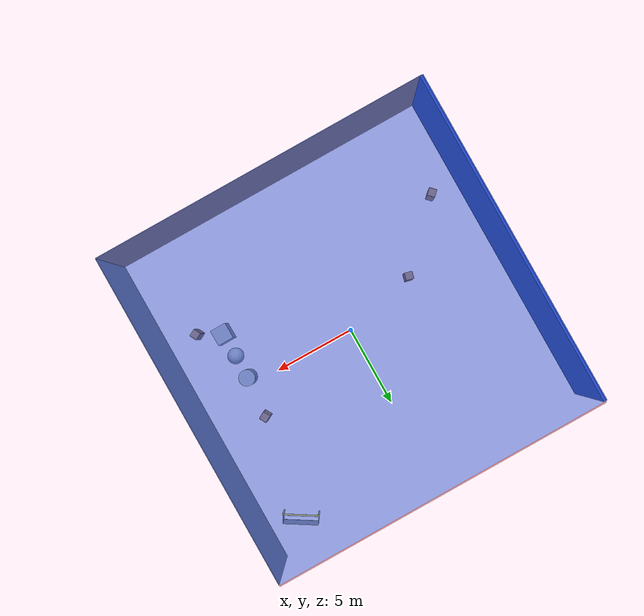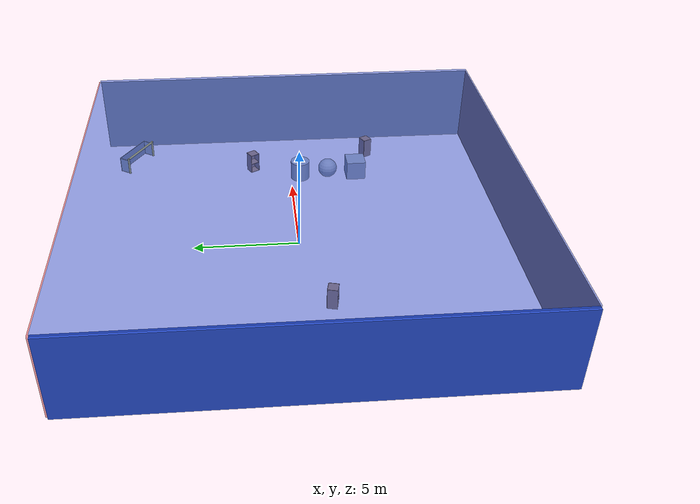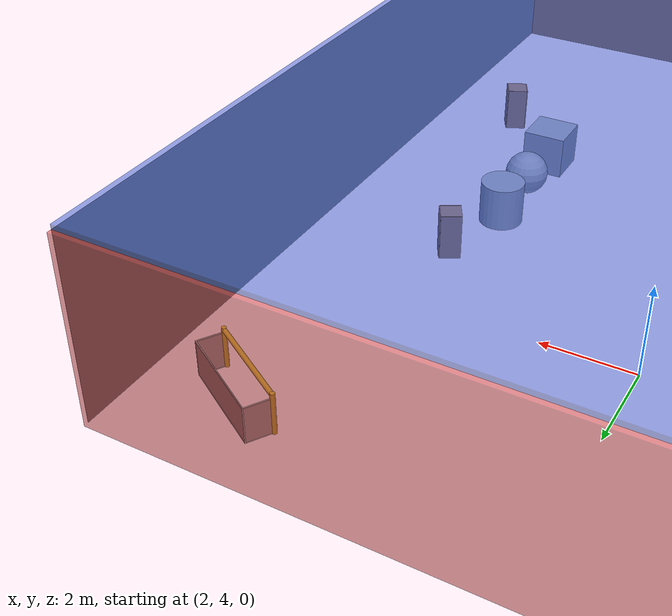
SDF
<sdf version="1.4">
 <world name="default">
  <physics type="ode">
   <max_step_size>0.001</max_step_size>
   <real_time_factor>1</real_time_factor>
   <real_time_update_rate>1000</real_time_update_rate>
   <gravity>0 0 -9.8</gravity>
  </physics>
  <scene><ambient>0.4 0.4 0.4 1</ambient><background>0.7 0.7 0.7 1</background><shadows>1</shadows></scene>
  <model name="Surrounding">
   <static>1</static>
   <link name="Ceiling">
    <collision name="Ceiling_Collision"><geometry><box><size>20 20 0.1</size></box></geometry></collision>
    <visual name="Ceiling_Visual">
     <geometry><box><size>20 20 0.1</size></box></geometry>
     <material>
      <script><uri>file://media/materials/scripts/gazebo.material</uri><name>Gazebo/BlueTransparent</name></script>
     </material>
    </visual>
    <pose>0 0 4.05 0 0 0</pose>
   </link>
   <link name="Wall_South">
    <collision name="Wall_South_Collision">
     <geometry><box><size>20 0 4</size></box></geometry>
     <pose>0 0 2 0 -0 0</pose>
    </collision>
    <visual name="Wall_South_Visual">
     <pose>0 0 2 0 -0 0</pose>
     <geometry><box><size>20 0 4</size></box></geometry>
     <material>
      <script><uri>file://media/materials/scripts/gazebo.material</uri><name>Gazebo/WoodPallet</name></script>
     </material>
    </visual>
    <velocity_decay><linear>0</linear><angular>0</angular></velocity_decay>
    <pose>0 -10 0 0 -0 0</pose>
   </link>
   <link name="Wall_East">
    <collision name="Wall_21_Collision">
     <geometry><box><size>20 0 4</size></box></geometry>
     <pose>0 0 2 0 -0 0</pose>
    </collision>
    <visual name="Wall_21_Visual">
     <pose>0 0 2 0 -0 0</pose>
     <geometry><box><size>20 0 4</size></box></geometry>
     <material>
      <script><uri>file://media/materials/scripts/gazebo.material</uri><name>Gazebo/GreyGradientSky</name></script>
     </material>
    </visual>
    <velocity_decay><linear>0</linear><angular>0</angular></velocity_decay>
    <pose>10 0 0 0 -0 1.5708</pose>
   </link>
   <link name="Wall_North">
    <collision name="Wall_22_Collision">
     <geometry><box><size>20 0.2 4</size></box></geometry>
     <pose>0 0 2 0 -0 0</pose>
    </collision>
    <visual name="Wall_22_Visual">
     <pose>0 0 2 0 -0 0</pose>
     <geometry><box><size>20 0.2 4</size></box></geometry>
     <material>
      <script><uri>file://media/materials/scripts/gazebo.material</uri><name>Gazebo/RedTransparent</name></script>
     </material>
    </visual>
    <velocity_decay><linear>0</linear><angular>0</angular></velocity_decay>
    <pose>0 10 0 0 -0 0</pose>
   </link>
   <link name="Wall_West">
    <collision name="Wall_23_Collision">
     <geometry><box><size>20 0.2 4</size></box></geometry>
     <pose>0 0 2 0 -0 0</pose>
    </collision>
    <visual name="Wall_23_Visual">
     <pose>0 0 2 0 -0 0</pose>
     <geometry><box><size>20 0.2 4</size></box></geometry>
     <material>
      <script><uri>file://media/materials/scripts/gazebo.material</uri><name>Gazebo/BlueLaser</name></script>
     </material>
    </visual>
    <velocity_decay><linear>0</linear><angular>0</angular></velocity_decay>
    <pose>-10 0 0 0 0 -1.5708</pose>
   </link>
   <link name="Ground_link">
    <collision name="collision">
     <pose>0 0 .05 0 -0 0</pose>
     <geometry><box><size>20 20 0.1</size></box></geometry>
    </collision>
    <visual name="visual">
     <pose>0 0 .05 0 -0 0</pose>
     <geometry><box><size>20 20 0.1</size></box></geometry>
     <material>
      <script>
       <uri>file://media/materials/scripts/gazebo.material</uri>
       <name>Gazebo/OrangeTransparent</name>
      </script>
     </material>
    </visual>
   </link>
   <static>1</static>
  </model>
  <spherical_coordinates>
   <surface_model>EARTH_WGS84</surface_model>
   <latitude_deg>0</latitude_deg>
   <longitude_deg>0</longitude_deg>
   <elevation>0</elevation>
   <heading_deg>0</heading_deg>
  </spherical_coordinates>
  <light name="lightball_0" type="diffuse">
   <diffuse>0.8 0.8 0.8 1</diffuse>
   <specular>0.2 0.2 0.2 1</specular>
   <attenuation>
    <range>100</range>
    <constant>0.7</constant>
    <linear>0.01</linear>
    <quadratic>0.001</quadratic>
   </attenuation>
   <direction>-0.5 0.1 -0.9</direction>
   <pose>-4.65273453131 -6.81032325865 3.60702200878 0 0 0</pose>
  </light>
  <light name="lightball_1" type="diffuse">
   <diffuse>0.8 0.8 0.8 1</diffuse>
   <specular>0.2 0.2 0.2 1</specular>
   <attenuation>
    <range>100</range>
    <constant>0.7</constant>
    <linear>0.01</linear>
    <quadratic>0.001</quadratic>
   </attenuation>
   <direction>-0.5 0.1 -0.9</direction>
   <pose>-0.0755667062576 5.94330623055 3.36275023136 0 0 0</pose>
  </light>
  <light name="lightball_2" type="diffuse">
   <diffuse>0.8 0.8 0.8 1</diffuse>
   <specular>0.2 0.2 0.2 1</specular>
   <attenuation>
    <range>100</range>
    <constant>0.7</constant>
    <linear>0.01</linear>
    <quadratic>0.001</quadratic>
   </attenuation>
   <direction>-0.5 0.1 -0.9</direction>
   <pose>8.67152017084 -6.89040510913 2.15293655396 0 0 0</pose>
  </light>
  <light name="lightball_3" type="diffuse">
   <diffuse>0.8 0.8 0.8 1</diffuse>
   <specular>0.2 0.2 0.2 1</specular>
   <attenuation>
    <range>100</range>
    <constant>0.7</constant>
    <linear>0.01</linear>
    <quadratic>0.001</quadratic>
   </attenuation>
   <direction>-0.5 0.1 -0.9</direction>
   <pose>1.66640544982 -6.61689804997 2.07998163155 0 0 0</pose>
  </light>
  <light name="lightball_4" type="diffuse">
   <diffuse>0.8 0.8 0.8 1</diffuse>
   <specular>0.2 0.2 0.2 1</specular>
   <attenuation>
    <range>100</range>
    <constant>0.7</constant>
    <linear>0.01</linear>
    <quadratic>0.001</quadratic>
   </attenuation>
   <direction>-0.5 0.1 -0.9</direction>
   <pose>-6.39229638894 -0.117886449412 2.47116936246 0 0 0</pose>
  </light>
  <light name="lightball_5" type="diffuse">
   <diffuse>0.8 0.8 0.8 1</diffuse>
   <specular>0.2 0.2 0.2 1</specular>
   <attenuation>
    <range>100</range>
    <constant>0.7</constant>
    <linear>0.01</linear>
    <quadratic>0.001</quadratic>
   </attenuation>
   <direction>-0.5 0.1 -0.9</direction>
   <pose>-5.06834203656 5.5499152909 1.0374937086 0 0 0</pose>
  </light>
  <light name="lightball_6" type="diffuse">
   <diffuse>0.8 0.8 0.8 1</diffuse>
   <specular>0.2 0.2 0.2 1</specular>
   <attenuation>
    <range>100</range>
    <constant>0.7</constant>
    <linear>0.01</linear>
    <quadratic>0.001</quadratic>
   </attenuation>
   <direction>-0.5 0.1 -0.9</direction>
   <pose>-4.96296422501 4.94368848298 3.18538405633 0 0 0</pose>
  </light>
  <light name="lightball_7" type="diffuse">
   <diffuse>0.8 0.8 0.8 1</diffuse>
   <specular>0.2 0.2 0.2 1</specular>
   <attenuation>
    <range>100</range>
    <constant>0.7</constant>
    <linear>0.01</linear>
    <quadratic>0.001</quadratic>
   </attenuation>
   <direction>-0.5 0.1 -0.9</direction>
   <pose>4.47966892934 5.3221888922 1.25050419712 0 0 0</pose>
  </light>
  <light name="lightball_8" type="diffuse">
   <diffuse>0.8 0.8 0.8 1</diffuse>
   <specular>0.2 0.2 0.2 1</specular>
   <attenuation>
    <range>100</range>
    <constant>0.7</constant>
    <linear>0.01</linear>
    <quadratic>0.001</quadratic>
   </attenuation>
   <direction>-0.5 0.1 -0.9</direction>
   <pose>-4.68967567726 -4.91939440693 1.29950459553 0 0 0</pose>
  </light>
  <light name="lightball_9" type="diffuse">
   <diffuse>0.8 0.8 0.8 1</diffuse>
   <specular>0.2 0.2 0.2 1</specular>
   <attenuation>
    <range>100</range>
    <constant>0.7</constant>
    <linear>0.01</linear>
    <quadratic>0.001</quadratic>
   </attenuation>
   <direction>-0.5 0.1 -0.9</direction>
   <pose>7.60623877816 3.73342949626 1.64961878507 0 0 0</pose>
  </light>
  <light name="lightball_10" type="diffuse">
   <diffuse>0.8 0.8 0.8 1</diffuse>
   <specular>0.2 0.2 0.2 1</specular>
   <attenuation>
    <range>100</range>
    <constant>0.7</constant>
    <linear>0.01</linear>
    <quadratic>0.001</quadratic>
   </attenuation>
   <direction>-0.5 0.1 -0.9</direction>
   <pose>8.50687110839 -9.77917894984 1.96436225462 0 0 0</pose>
  </light>
  <include><uri>model://cabinet</uri><pose>-8.1308170884 -4.68900318105 0 0 0 2.3513247001</pose></include>
  <include><uri>model://cabinet</uri><pose>-4.54911449268 -1.0934273554 0 0 0 1.33406762624</pose></include>
  <include><uri>model://cabinet</uri><pose>8.07347091317 -4.25039789029 0 0 0 2.04835268977</pose></include>
  <include>
   <uri>model://textured_shapes</uri>
   <pose>6.79829792644 -2.04569467184 0 0 0 0.0092193491702</pose>
  </include>
  <include><uri>model://cabinet</uri><pose>6.89160551422 1.98259721884 0 0 0 0.511532020878</pose></include>
  <include>
   <uri>model://robocup_3Dsim_goal</uri>
   <pose>7.90095881761 8.05193684242 0 0 0 1.01703008012</pose>
  </include>
 </world>
</sdf>

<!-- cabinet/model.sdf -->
<sdf version="1.5">
  <model name="cabinet">
    <static>true</static>
    <link name="cabinet_bottom_plate">
      <inertial>
        <pose>0 0 -1 0 0 0</pose>
        <inertia>
          <ixx>2.050000</ixx>
          <ixy>0</ixy>
          <ixz>0</ixz>
          <iyy>2.050000</iyy>
          <iyz>0</iyz>
          <izz>2.050000</izz>
        </inertia>
        <mass>25.000000</mass>
      </inertial>
      <collision name="cabinet_bottom_plate_geom">
        <pose>0 0 0.010000 0 0 0</pose>
        <geometry>
          <box>
            <size>0.450000 0.450000 0.020000</size>
          </box>
        </geometry>
      </collision>
      <visual name="cabinet_bottom_plate_geom_visual">
        <pose>0 0 0.010000 0 0 0</pose>
        <geometry>
          <box>
            <size>0.450000 0.450000 0.020000</size>
          </box>
        </geometry>
        <material>
          <script>
            <uri>model://media/materials/scripts/gazebo.material</uri>
            <name>Gazebo/Wood</name>
          </script>
        </material>
      </visual>
      <collision name="cabinet_bottom_plate_geom_cabinet_back_plate">
        <pose>0.235000 0 0.510000 0 0 0</pose>
        <geometry>
          <box>
            <size>0.020000 0.450000 1.020000</size>
          </box>
        </geometry>
      </collision>
      <visual name="cabinet_bottom_plate_geom_cabinet_back_plate_visual">
        <pose>0.235000 0 0.510000 0 0 0</pose>
        <geometry>
          <box>
            <size>0.020000 0.450000 1.020000</size>
          </box>
        </geometry>
        <material>
          <script>
            <uri>model://media/materials/scripts/gazebo.material</uri>
            <name>Gazebo/Wood</name>
          </script>
        </material>
      </visual>
      <collision name="cabinet_bottom_plate_geom_cabinet_left_plate">
        <pose>0 0.235000 0.510000 0 0 0</pose>
        <geometry>
          <box>
            <size>0.450000 0.020000 1.020000</size>
          </box>
        </geometry>
      </collision>
      <visual name="cabinet_bottom_plate_geom_cabinet_left_plate_visual">
        <pose>0 0.235000 0.510000 0 0 0</pose>
        <geometry>
          <box>
            <size>0.450000 0.020000 1.020000</size>
          </box>
        </geometry>
        <material>
          <script>
            <uri>model://media/materials/scripts/gazebo.material</uri>
            <name>Gazebo/Wood</name>
          </script>
        </material>
      </visual>
      <collision name="cabinet_bottom_plate_geom_cabinet_middle_plate">
        <pose>0 0 0.510000 0 0 0</pose>
        <geometry>
          <box>
            <size>0.450000 0.450000 0.020000</size>
          </box>
        </geometry>
      </collision>
      <visual name="cabinet_bottom_plate_geom_cabinet_middle_plate_visual">
        <pose>0 0 0.510000 0 0 0</pose>
        <geometry>
          <box>
            <size>0.450000 0.450000 0.020000</size>
          </box>
        </geometry>
        <material>
          <script>
            <uri>model://media/materials/scripts/gazebo.material</uri>
            <name>Gazebo/Wood</name>
          </script>
        </material>
      </visual>
      <collision name="cabinet_bottom_plate_geom_cabinet_right_plate">
        <pose>0 -0.235000 0.510000 0 0 0</pose>
        <geometry>
          <box>
            <size>0.450000 0.020000 1.020000</size>
          </box>
        </geometry>
      </collision>
      <visual name="cabinet_bottom_plate_geom_cabinet_right_plate_visual">
        <pose>0 -0.235000 0.510000 0 0 0</pose>
        <geometry>
          <box>
            <size>0.450000 0.020000 1.020000</size>
          </box>
        </geometry>
        <material>
          <script>
            <uri>model://media/materials/scripts/gazebo.material</uri>
            <name>Gazebo/Wood</name>
          </script>
        </material>
      </visual>
      <collision name="cabinet_bottom_plate_geom_cabinet_top_plate">
        <pose>0 0 1.010000 0 0 0</pose>
        <geometry>
          <box>
            <size>0.450000 0.450000 0.020000</size>
          </box>
        </geometry>
      </collision>
      <visual name="cabinet_bottom_plate_geom_cabinet_top_plate_visual">
        <pose>0 0 1.010000 0 0 0</pose>
        <geometry>
          <box>
            <size>0.450000 0.450000 0.020000</size>
          </box>
        </geometry>
        <material>
          <script>
            <uri>model://media/materials/scripts/gazebo.material</uri>
            <name>Gazebo/Wood</name>
          </script>
        </material>
      </visual>
    </link>
  </model>
</sdf>

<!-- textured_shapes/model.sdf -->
<sdf version="1.6">
  <model name="textured_shapes">
    <pose>0 0 0.5 0 0 0</pose>
    <link name="box">
      <pose>0 -1.5 0 0 0 0</pose>
      <collision name="collision">
        <geometry>
          <box>
            <size>1 1 1</size>
          </box>
        </geometry>
      </collision>
      <visual name="visual">
        <geometry>
          <box>
            <size>1 1 1</size>
          </box>
        </geometry>
        <material>
          <script>
            <uri>model://../model_source/models/textured_shapes/materials/scripts</uri>
            <uri>model://../model_source/models/textured_shapes/materials/textures</uri>
            <name>TexturedShape/Squares</name>
          </script>
        </material>
      </visual>
    </link>
    <link name="sphere">
      <collision name="collision">
        <geometry>
          <sphere>
            <radius>0.5</radius>
          </sphere>
        </geometry>
      </collision>
      <visual name="visual">
        <geometry>
          <sphere>
            <radius>0.5</radius>
          </sphere>
        </geometry>
        <material>
          <script>
            <uri>model://../model_source/models/textured_shapes/materials/scripts</uri>
            <uri>model://../model_source/models/textured_shapes/materials/textures</uri>
            <name>TexturedShape/Squares</name>
          </script>
        </material>
      </visual>
    </link>
    <link name="cylinder">
      <pose>0 1.5 0 0 0 0</pose>
      <collision name="collision">
        <geometry>
          <cylinder>
            <radius>0.5</radius>
            <length>1</length>
          </cylinder>
        </geometry>
      </collision>
      <visual name="visual">
        <geometry>
          <cylinder>
            <radius>0.5</radius>
            <length>1</length>
          </cylinder>
        </geometry>
        <material>
          <script>
            <uri>model://../model_source/models/textured_shapes/materials/scripts</uri>
            <uri>model://../model_source/models/textured_shapes/materials/textures</uri>
            <name>TexturedShape/Squares</name>
          </script>
        </material>
      </visual>
    </link>
  </model>
</sdf>

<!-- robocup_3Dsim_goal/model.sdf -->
<sdf version="1.5">
  <model name="robocup_3d_goal">
    <static>true</static>
    <link name="left_post">
      <pose>0 1.05 0.45 0 0 0</pose>
      <collision name="collision">
        <geometry>
          <cylinder>
            <radius>0.05</radius>
            <length>0.9</length>
          </cylinder>
        </geometry>
      </collision>
      <visual name="visual">
        <geometry>
          <cylinder>
            <radius>0.05</radius>
            <length>0.9</length>
          </cylinder>
        </geometry>
        <material>
          <script>
            <uri>file://media/materials/scripts/gazebo.material</uri>
            <name>Gazebo/ZincYellow</name>
          </script>
        </material>
      </visual>
    </link>
    <link name="left_support_horiz_lower">
      <pose>0.30 1.05 0.01 0 0 0</pose>
      <collision name="collision">
        <geometry>
          <box>
            <size>0.50 0.02 0.02</size>
          </box>
        </geometry>
      </collision>
      <visual name="visual">
        <geometry>
          <box>
            <size>0.50 0.02 0.02</size>
          </box>
        </geometry>
        <material>
          <script>
            <uri>file://media/materials/scripts/gazebo.material</uri>
            <name>Gazebo/White</name>
          </script>
        </material>
      </visual>
    </link>
    <link name="left_support_horiz_upper">
      <pose>0.30 1.05 0.79 0 0 0</pose>
      <collision name="collision">
        <geometry>
          <box>
            <size>0.50 0.02 0.02</size>
          </box>
        </geometry>
      </collision>
      <visual name="visual">
        <geometry>
          <box>
            <size>0.50 0.02 0.02</size>
          </box>
        </geometry>
        <material>
          <script>
            <uri>file://media/materials/scripts/gazebo.material</uri>
            <name>Gazebo/White</name>
          </script>
        </material>
      </visual>
    </link>
    <link name="left_support_vertical">
      <pose>0.56 1.05 0.4 0 1.5708 0</pose>
      <collision name="collision">
        <geometry>
          <box>
            <size>0.80 0.02 0.02</size>
          </box>
        </geometry>
      </collision>
      <visual name="visual">
        <geometry>
          <box>
            <size>0.80 0.02 0.02</size>
          </box>
        </geometry>
        <material>
          <script>
            <uri>file://media/materials/scripts/gazebo.material</uri>
            <name>Gazebo/White</name>
          </script>
        </material>
      </visual>
    </link>
    <link name="right_support_horiz_lower">
      <pose>0.30 -1.05 0.01 0 0 0</pose>
      <collision name="collision">
        <geometry>
          <box>
            <size>0.50 0.02 0.02</size>
          </box>
        </geometry>
      </collision>
      <visual name="visual">
        <geometry>
          <box>
            <size>0.50 0.02 0.02</size>
          </box>
        </geometry>
        <material>
          <script>
            <uri>file://media/materials/scripts/gazebo.material</uri>
            <name>Gazebo/White</name>
          </script>
        </material>
      </visual>
    </link>
    <link name="right_support_horiz_upper">
      <pose>0.30 -1.05 0.79 0 0 0</pose>
      <collision name="collision">
        <geometry>
          <box>
            <size>0.50 0.02 0.02</size>
          </box>
        </geometry>
      </collision>
      <visual name="visual">
        <geometry>
          <box>
            <size>0.50 0.02 0.02</size>
          </box>
        </geometry>
        <material>
          <script>
            <uri>file://media/materials/scripts/gazebo.material</uri>
            <name>Gazebo/White</name>
          </script>
        </material>
      </visual>
    </link>
    <link name="right_support_vertical">
      <pose>0.56 -1.05 0.4 0 1.5708 0</pose>
      <collision name="collision">
        <geometry>
          <box>
            <size>0.80 0.02 0.02</size>
          </box>
        </geometry>
      </collision>
      <visual name="visual">
        <geometry>
          <box>
            <size>0.80 0.02 0.02</size>
          </box>
        </geometry>
        <material>
          <script>
            <uri>file://media/materials/scripts/gazebo.material</uri>
            <name>Gazebo/White</name>
          </script>
        </material>
      </visual>
    </link>
    <link name="center_support_horiz_lower">
      <pose>0.56 0 0.01 0 1.5708 0</pose>
      <collision name="collision">
        <geometry>
          <box>
            <size>0.02 2.08 0.02</size>
          </box>
        </geometry>
      </collision>
      <visual name="visual">
        <geometry>
          <box>
            <size>0.02 2.08 0.02</size>
          </box>
        </geometry>
        <material>
          <script>
            <uri>file://media/materials/scripts/gazebo.material</uri>
            <name>Gazebo/White</name>
          </script>
        </material>
      </visual>
    </link>
    <link name="center_support_horiz_upper">
      <pose>0.56 0 0.79 0 1.5708 0</pose>
      <collision name="collision">
        <geometry>
          <box>
            <size>0.02 2.08 0.02</size>
          </box>
        </geometry>
      </collision>
      <visual name="visual">
        <geometry>
          <box>
            <size>0.02 2.08 0.02</size>
          </box>
        </geometry>
        <material>
          <script>
            <uri>file://media/materials/scripts/gazebo.material</uri>
            <name>Gazebo/White</name>
          </script>
        </material>
      </visual>
    </link>
    <link name="right_post">
      <pose>0 -1.05 0.45 0 0 0</pose>
      <collision name="collision">
        <geometry>
          <cylinder>
            <radius>0.05</radius>
            <length>0.9</length>
          </cylinder>
        </geometry>
      </collision>
      <visual name="visual">
        <geometry>
          <cylinder>
            <radius>0.05</radius>
            <length>0.9</length>
          </cylinder>
        </geometry>
        <material>
          <script>
            <uri>file://media/materials/scripts/gazebo.material</uri>
            <name>Gazebo/ZincYellow</name>
          </script>
        </material>
      </visual>
    </link>
    <link name="crossbar">
      <pose>0 0 0.85 1.57 1.57 0</pose>
      <collision name="collision">
        <geometry>
          <cylinder>
            <radius>0.05</radius>
            <length>2.0</length>
          </cylinder>
        </geometry>
      </collision>
      <visual name="visual">
        <geometry>
          <cylinder>
            <radius>0.05</radius>
            <length>2.0</length>
          </cylinder>
        </geometry>
        <material>
          <script>
            <uri>file://media/materials/scripts/gazebo.material</uri>
            <name>Gazebo/ZincYellow</name>
          </script>
        </material>
      </visual>
    </link>
    <link name="center_net">
      <pose>0.56 0 0.40 0 0 0</pose>
      <collision name="collision">
        <geometry>
          <box>
            <size>0.01 2.1 0.80</size>
          </box>
        </geometry>
      </collision>
      <visual name="visual">
        <geometry>
          <box>
            <size>0.01 2.1 0.80</size>
          </box>
        </geometry>
        <material>
          <script>
            <uri>model://../model_source/models/robocup09_spl_field/materials/scripts/</uri>
            <uri>model://../model_source/models/robocup09_spl_field/materials/textures/</uri>
            <name>RoboCup/Net</name>
          </script>
        </material>
      </visual>
    </link>
    <link name="left_net">
      <pose>0.30 1.05 0.40 0 0 0</pose>
      <collision name="collision">
        <geometry>
          <box>
            <size>0.50 0.01 0.76</size>
          </box>
        </geometry>
      </collision>
      <visual name="visual">
        <geometry>
          <box>
            <size>0.50 0.01 0.76</size>
          </box>
        </geometry>
        <material>
          <script>
            <uri>model://../model_source/models/robocup09_spl_field/materials/scripts/</uri>
            <uri>model://../model_source/models/robocup09_spl_field/materials/textures/</uri>
            <name>RoboCup/Net</name>
          </script>
        </material>
      </visual>
    </link>
    <link name="right_net">
      <pose>0.30 -1.05 0.40 0 0 0</pose>
      <collision name="collision">
        <geometry>
          <box>
            <size>0.50 0.01 0.76</size>
          </box>
        </geometry>
      </collision>
      <visual name="visual">
        <geometry>
          <box>
            <size>0.50 0.01 0.76</size>
          </box>
        </geometry>
        <material>
          <script>
            <uri>model://../model_source/models/robocup09_spl_field/materials/scripts/</uri>
            <uri>model://../model_source/models/robocup09_spl_field/materials/textures/</uri>
            <name>RoboCup/Net</name>
          </script>
        </material>
      </visual>
    </link>
  </model>
</sdf>
